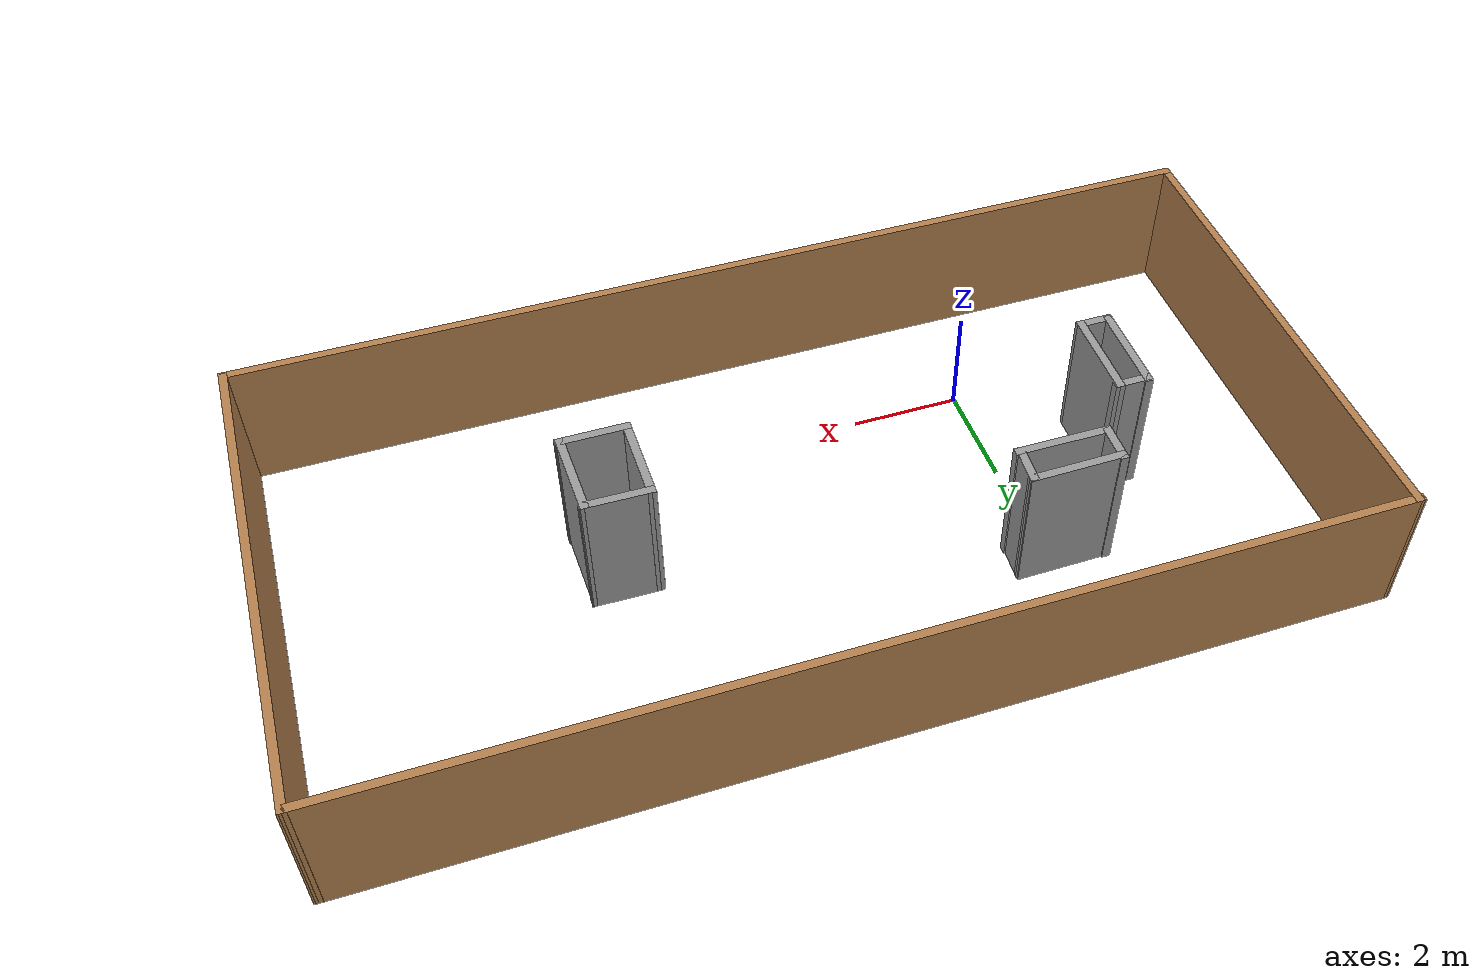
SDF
<?xml version='1.0'?>
<sdf version='1.6'>
  <model name='24_1_29_sim'>
    <pose frame=''>3.87342 2.22567 0 0 -0 0</pose>
    <link name='Wall_11'>
      <collision name='Wall_11_Collision'>
        <geometry>
          <box>
            <size>0.779273 0.15 2.5</size>
          </box>
        </geometry>
        <pose frame=''>0 0 1.25 0 -0 0</pose>
      </collision>
      <visual name='Wall_11_Visual'>
        <pose frame=''>0 0 1.25 0 -0 0</pose>
        <geometry>
          <box>
            <size>0.779273 0.15 2.5</size>
          </box>
        </geometry>
        <material>
          <script>
            <uri>file://media/materials/scripts/gazebo.material</uri>
            <name>Gazebo/Grey</name>
          </script>
          <ambient>1 1 1 1</ambient>
        </material>
        <meta>
          <layer>0</layer>
        </meta>
      </visual>
      <pose frame=''>-4.91698 1.83959 0 0 -0 1.54913</pose>
    </link>
    <link name='Wall_12'>
      <collision name='Wall_12_Collision'>
        <geometry>
          <box>
            <size>1.75 0.15 2.5</size>
          </box>
        </geometry>
        <pose frame=''>0 0 1.25 0 -0 0</pose>
      </collision>
      <visual name='Wall_12_Visual'>
        <pose frame=''>0 0 1.25 0 -0 0</pose>
        <geometry>
          <box>
            <size>1.75 0.15 2.5</size>
          </box>
        </geometry>
        <material>
          <script>
            <uri>file://media/materials/scripts/gazebo.material</uri>
            <name>Gazebo/Grey</name>
          </script>
          <ambient>1 1 1 1</ambient>
        </material>
        <meta>
          <layer>0</layer>
        </meta>
      </visual>
      <pose frame=''>-4.11017 2.13662 0 0 -0 0.011387</pose>
    </link>
    <link name='Wall_13'>
      <collision name='Wall_13_Collision'>
        <geometry>
          <box>
            <size>0.762876 0.15 2.5</size>
          </box>
        </geometry>
        <pose frame=''>0 0 1.25 0 -0 0</pose>
      </collision>
      <visual name='Wall_13_Visual'>
        <pose frame=''>0 0 1.25 0 -0 0</pose>
        <geometry>
          <box>
            <size>0.762876 0.15 2.5</size>
          </box>
        </geometry>
        <material>
          <script>
            <uri>file://media/materials/scripts/gazebo.material</uri>
            <name>Gazebo/Grey</name>
          </script>
          <ambient>1 1 1 1</ambient>
        </material>
        <meta>
          <layer>0</layer>
        </meta>
      </visual>
      <pose frame=''>-3.33028 1.82247 0 0 -0 -1.63648</pose>
    </link>
    <link name='Wall_14'>
      <collision name='Wall_14_Collision'>
        <geometry>
          <box>
            <size>1.72342 0.15 2.5</size>
          </box>
        </geometry>
        <pose frame=''>0 0 1.25 0 -0 0</pose>
      </collision>
      <visual name='Wall_14_Visual'>
        <pose frame=''>0 0 1.25 0 -0 0</pose>
        <geometry>
          <box>
            <size>1.72342 0.15 2.5</size>
          </box>
        </geometry>
        <material>
          <script>
            <uri>file://media/materials/scripts/gazebo.material</uri>
            <name>Gazebo/Grey</name>
          </script>
          <ambient>1 1 1 1</ambient>
        </material>
        <meta>
          <layer>0</layer>
        </meta>
      </visual>
      <pose frame=''>-4.10651 1.52088 0 0 -0 3.13627</pose>
    </link>
    <link name='Wall_16'>
      <collision name='Wall_16_Collision'>
        <geometry>
          <box>
            <size>1.75022 0.15 2.5</size>
          </box>
        </geometry>
        <pose frame=''>0 0 1.25 0 -0 0</pose>
      </collision>
      <visual name='Wall_16_Visual'>
        <pose frame=''>0 0 1.25 0 -0 0</pose>
        <geometry>
          <box>
            <size>1.75022 0.15 2.5</size>
          </box>
        </geometry>
        <material>
          <script>
            <uri>file://media/materials/scripts/gazebo.material</uri>
            <name>Gazebo/Grey</name>
          </script>
          <ambient>1 1 1 1</ambient>
        </material>
        <meta>
          <layer>0</layer>
        </meta>
      </visual>
      <pose frame=''>-6.1341 -0.176678 0 0 -0 -1.58742</pose>
    </link>
    <link name='Wall_17'>
      <collision name='Wall_17_Collision'>
        <geometry>
          <box>
            <size>0.670199 0.15 2.5</size>
          </box>
        </geometry>
        <pose frame=''>0 0 1.25 0 -0 0</pose>
      </collision>
      <visual name='Wall_17_Visual'>
        <pose frame=''>0 0 1.25 0 -0 0</pose>
        <geometry>
          <box>
            <size>0.670199 0.15 2.5</size>
          </box>
        </geometry>
        <material>
          <script>
            <uri>file://media/materials/scripts/gazebo.material</uri>
            <name>Gazebo/Grey</name>
          </script>
          <ambient>1 1 1 1</ambient>
        </material>
        <meta>
          <layer>0</layer>
        </meta>
      </visual>
      <pose frame=''>-5.8873 -1.00328 0 0 -0 0</pose>
    </link>
    <link name='Wall_18'>
      <collision name='Wall_18_Collision'>
        <geometry>
          <box>
            <size>1.75088 0.15 2.5</size>
          </box>
        </geometry>
        <pose frame=''>0 0 1.25 0 -0 0</pose>
      </collision>
      <visual name='Wall_18_Visual'>
        <pose frame=''>0 0 1.25 0 -0 0</pose>
        <geometry>
          <box>
            <size>1.75088 0.15 2.5</size>
          </box>
        </geometry>
        <material>
          <script>
            <uri>file://media/materials/scripts/gazebo.material</uri>
            <name>Gazebo/Grey</name>
          </script>
          <ambient>1 1 1 1</ambient>
        </material>
        <meta>
          <layer>0</layer>
        </meta>
      </visual>
      <pose frame=''>-5.6139 -0.203278 0 0 -0 1.55417</pose>
    </link>
    <link name='Wall_19'>
      <collision name='Wall_19_Collision'>
        <geometry>
          <box>
            <size>0.6968 0.15 2.5</size>
          </box>
        </geometry>
        <pose frame=''>0 0 1.25 0 -0 0</pose>
      </collision>
      <visual name='Wall_19_Visual'>
        <pose frame=''>0 0 1.25 0 -0 0</pose>
        <geometry>
          <box>
            <size>0.6968 0.15 2.5</size>
          </box>
        </geometry>
        <material>
          <script>
            <uri>file://media/materials/scripts/gazebo.material</uri>
            <name>Gazebo/Grey</name>
          </script>
          <ambient>1 1 1 1</ambient>
        </material>
        <meta>
          <layer>0</layer>
        </meta>
      </visual>
      <pose frame=''>-5.8474 0.596722 0 0 -0 -3.14159</pose>
    </link>
    <link name='Wall_21'>
      <collision name='Wall_21_Collision'>
        <geometry>
          <box>
            <size>1.67568 0.15 2.5</size>
          </box>
        </geometry>
        <pose frame=''>0 0 1.25 0 -0 0</pose>
      </collision>
      <visual name='Wall_21_Visual'>
        <pose frame=''>0 0 1.25 0 -0 0</pose>
        <geometry>
          <box>
            <size>1.67568 0.15 2.5</size>
          </box>
        </geometry>
        <material>
          <script>
            <uri>file://media/materials/scripts/gazebo.material</uri>
            <name>Gazebo/Grey</name>
          </script>
          <ambient>1 1 1 1</ambient>
        </material>
        <meta>
          <layer>0</layer>
        </meta>
      </visual>
      <pose frame=''>2.67149 -0.365474 0 0 -0 -1.56504</pose>
    </link>
    <link name='Wall_22'>
      <collision name='Wall_22_Collision'>
        <geometry>
          <box>
            <size>1.31557 0.15 2.5</size>
          </box>
        </geometry>
        <pose frame=''>0 0 1.25 0 -0 0</pose>
      </collision>
      <visual name='Wall_22_Visual'>
        <pose frame=''>0 0 1.25 0 -0 0</pose>
        <geometry>
          <box>
            <size>1.31557 0.15 2.5</size>
          </box>
        </geometry>
        <material>
          <script>
            <uri>file://media/materials/scripts/gazebo.material</uri>
            <name>Gazebo/Grey</name>
          </script>
          <ambient>1 1 1 1</ambient>
        </material>
        <meta>
          <layer>0</layer>
        </meta>
      </visual>
      <pose frame=''>3.25867 -1.1283 0 0 -0 0</pose>
    </link>
    <link name='Wall_23'>
      <collision name='Wall_23_Collision'>
        <geometry>
          <box>
            <size>1.65867 0.15 2.5</size>
          </box>
        </geometry>
        <pose frame=''>0 0 1.25 0 -0 0</pose>
      </collision>
      <visual name='Wall_23_Visual'>
        <pose frame=''>0 0 1.25 0 -0 0</pose>
        <geometry>
          <box>
            <size>1.65867 0.15 2.5</size>
          </box>
        </geometry>
        <material>
          <script>
            <uri>file://media/materials/scripts/gazebo.material</uri>
            <name>Gazebo/Grey</name>
          </script>
          <ambient>1 1 1 1</ambient>
        </material>
        <meta>
          <layer>0</layer>
        </meta>
      </visual>
      <pose frame=''>3.80428 -0.37422 0 0 -0 1.59689</pose>
    </link>
    <link name='Wall_24'>
      <collision name='Wall_24_Collision'>
        <geometry>
          <box>
            <size>1.28512 0.15 2.5</size>
          </box>
        </geometry>
        <pose frame=''>0 0 1.25 0 -0 0</pose>
      </collision>
      <visual name='Wall_24_Visual'>
        <pose frame=''>0 0 1.25 0 -0 0</pose>
        <geometry>
          <box>
            <size>1.28512 0.15 2.5</size>
          </box>
        </geometry>
        <material>
          <script>
            <uri>file://media/materials/scripts/gazebo.material</uri>
            <name>Gazebo/Grey</name>
          </script>
          <ambient>1 1 1 1</ambient>
        </material>
        <meta>
          <layer>0</layer>
        </meta>
      </visual>
      <pose frame=''>3.23459 0.388605 0 0 -0 3.12618</pose>
    </link>
    <link name='Wall_6'>
      <collision name='Wall_6_Collision'>
        <geometry>
          <box>
            <size>9.19633 0.15 2.5</size>
          </box>
        </geometry>
        <pose frame=''>0 0 1.25 0 -0 0</pose>
      </collision>
      <visual name='Wall_6_Visual'>
        <pose frame=''>0 0 1.25 0 -0 0</pose>
        <geometry>
          <box>
            <size>9.19633 0.15 2.5</size>
          </box>
        </geometry>
        <material>
          <script>
            <uri>file://media/materials/scripts/gazebo.material</uri>
            <name>Gazebo/Wood</name>
          </script>
          <ambient>1 1 1 1</ambient>
        </material>
        <meta>
          <layer>0</layer>
        </meta>
      </visual>
      <pose frame=''>-9.04066 0.015523 0 0 -0 -1.58094</pose>
    </link>
    <link name='Wall_7'>
      <collision name='Wall_7_Collision'>
        <geometry>
          <box>
            <size>18.1699 0.15 2.5</size>
          </box>
        </geometry>
        <pose frame=''>0 0 1.25 0 -0 0</pose>
      </collision>
      <visual name='Wall_7_Visual'>
        <pose frame=''>0 0 1.25 0 -0 0</pose>
        <geometry>
          <box>
            <size>18.1699 0.15 2.5</size>
          </box>
        </geometry>
        <material>
          <script>
            <uri>file://media/materials/scripts/gazebo.material</uri>
            <name>Gazebo/Wood</name>
          </script>
          <ambient>1 1 1 1</ambient>
        </material>
        <meta>
          <layer>0</layer>
        </meta>
      </visual>
      <pose frame=''>-0.076601 -4.53448 0 0 -0 -0.000414</pose>
    </link>
    <link name='Wall_8'>
      <collision name='Wall_8_Collision'>
        <geometry>
          <box>
            <size>9.22024 0.15 2.5</size>
          </box>
        </geometry>
        <pose frame=''>0 0 1.25 0 -0 0</pose>
      </collision>
      <visual name='Wall_8_Visual'>
        <pose frame=''>0 0 1.25 0 -0 0</pose>
        <geometry>
          <box>
            <size>9.22024 0.15 2.5</size>
          </box>
        </geometry>
        <material>
          <script>
            <uri>file://media/materials/scripts/gazebo.material</uri>
            <name>Gazebo/Wood</name>
          </script>
          <ambient>1 1 1 1</ambient>
        </material>
        <meta>
          <layer>0</layer>
        </meta>
      </visual>
      <pose frame=''>9.02511 -0.003502 0 0 -0 1.55731</pose>
    </link>
    <link name='Wall_9'>
      <collision name='Wall_9_Collision'>
        <geometry>
          <box>
            <size>18.2311 0.15 2.5</size>
          </box>
        </geometry>
        <pose frame=''>0 0 1.25 0 -0 0</pose>
      </collision>
      <visual name='Wall_9_Visual'>
        <pose frame=''>0 0 1.25 0 -0 0</pose>
        <geometry>
          <box>
            <size>18.2311 0.15 2.5</size>
          </box>
        </geometry>
        <material>
          <script>
            <uri>file://media/materials/scripts/gazebo.material</uri>
            <name>Gazebo/Wood</name>
          </script>
          <ambient>1 1 1 1</ambient>
        </material>
        <meta>
          <layer>0</layer>
        </meta>
      </visual>
      <pose frame=''>0.01517 4.53493 0 0 -0 3.14118</pose>
    </link>
    <static>1</static>
  </model>
</sdf>
